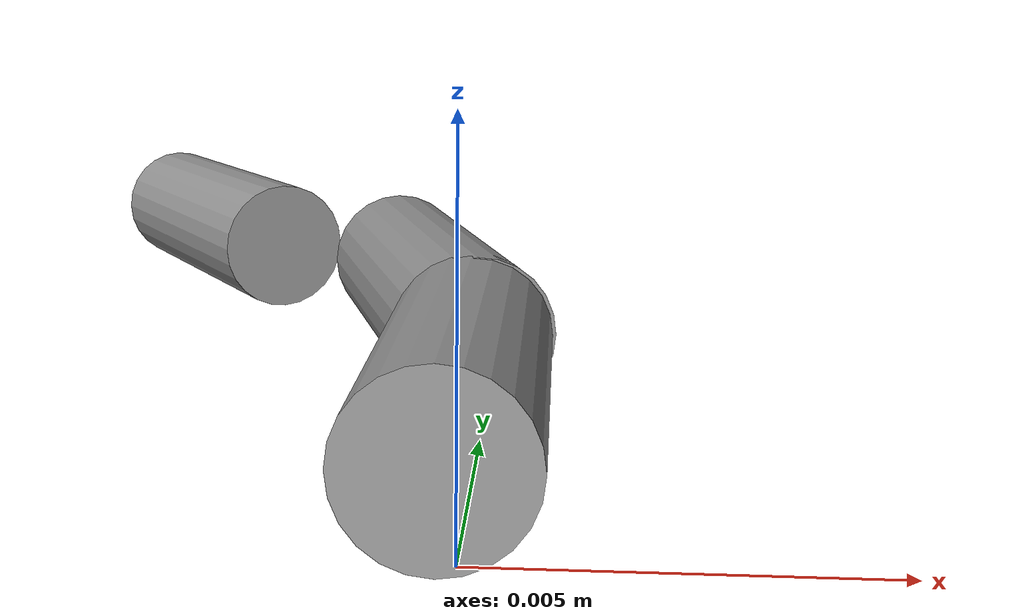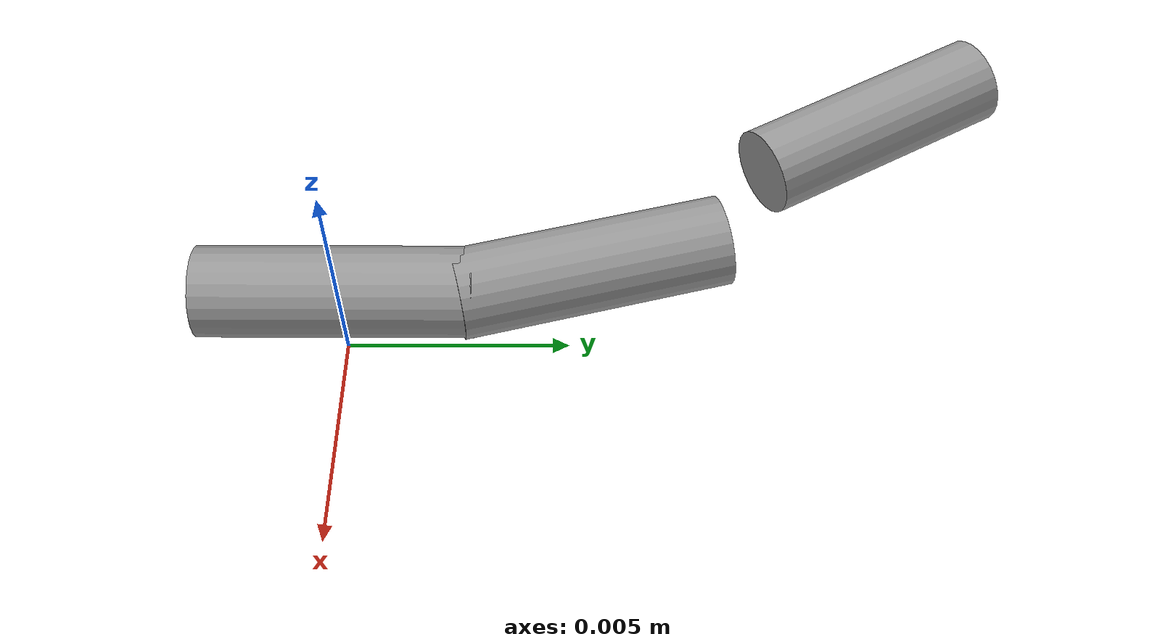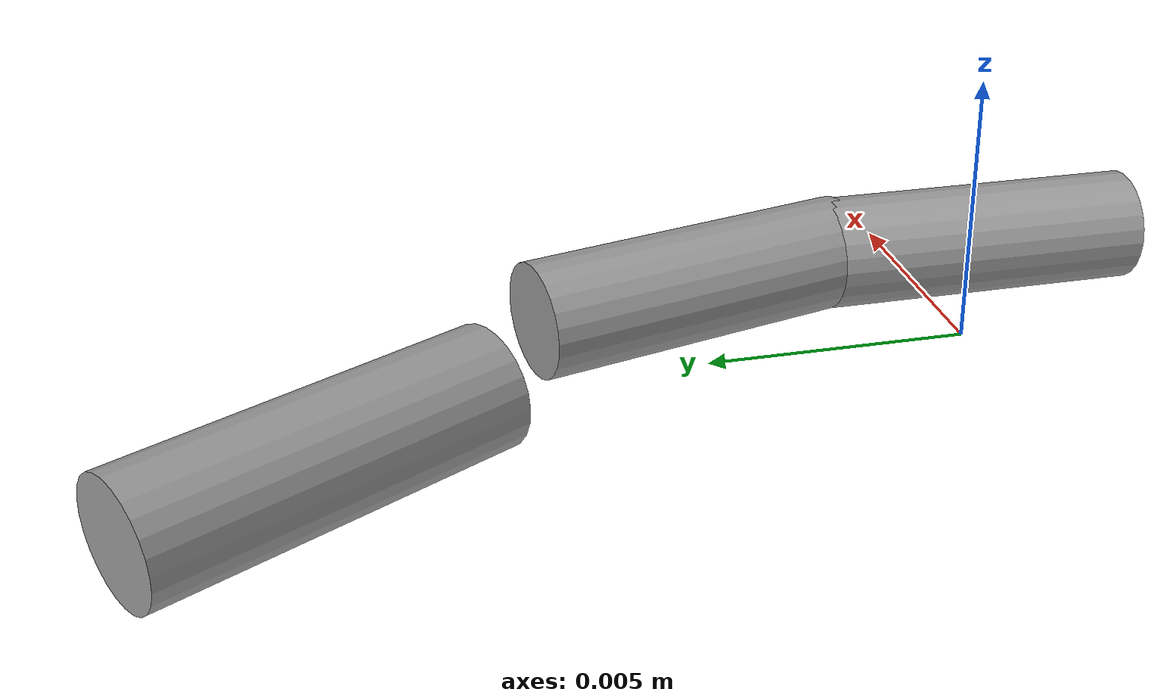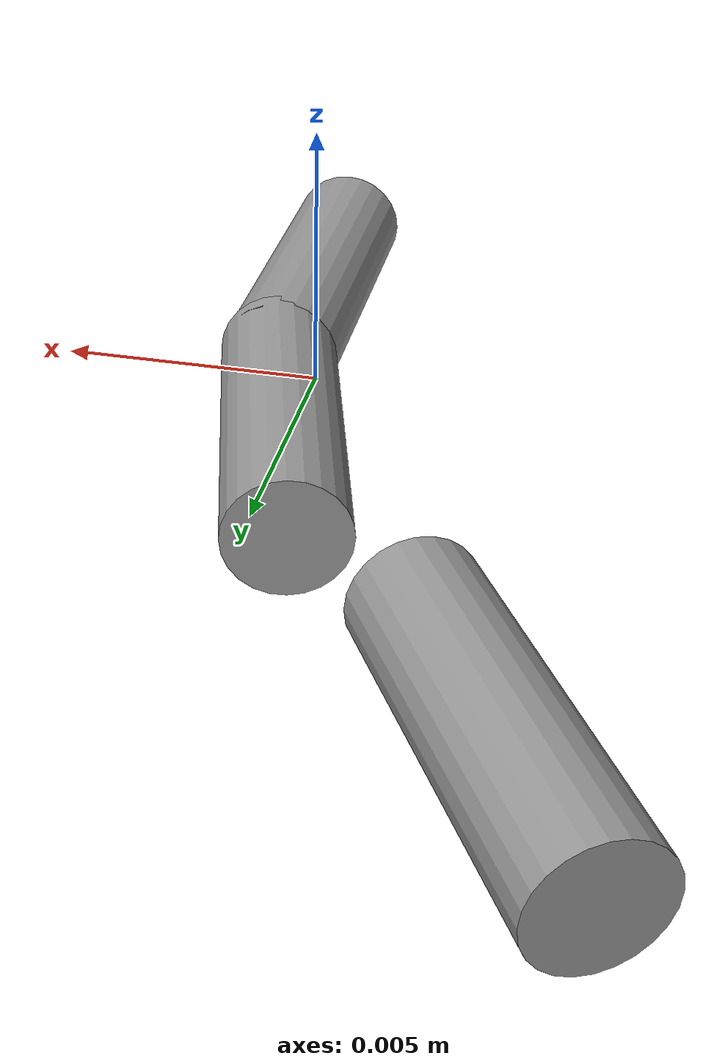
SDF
<?xml version="1.0" ?>
<sdf version="1.4">

  <model name="needle_rob">
      <static>true</static>
    <link name="needle_1">

  <pose>0 0 0.002 1.57 0 0</pose>
      <inertial>
        <mass>0.01</mass>
        <inertia>
          <ixx>0.001</ixx>
          <ixy>0</ixy>
          <ixz>0</ixz>
          <iyy>0.001</iyy>
          <iyz>0</iyz>
          <izz>0.001</izz>
        </inertia>
      </inertial>

     <collision name='collision'>
        <geometry>
          <cylinder>
            <radius>0.001</radius>
            <length>0.006</length>
          </cylinder>
        </geometry>
       <surface>
            <friction>
              <ode>
                <mu>50.0</mu>
                <mu2>50.0</mu2>
              </ode>
            </friction>
            <contact>
              <ode>
                <kp>1000000.0</kp>
                <kd>100.0</kd>
                <max_vel>1.0</max_vel>
                <min_depth>0.005</min_depth>
              </ode>
            </contact>
          </surface>
      </collision>

     <visual name='visual'>
        <geometry>
           <cylinder>
            <radius>0.001</radius>
            <length>0.006</length>
          </cylinder>
        </geometry>
        <material>
        <script>
            <uri>file://media/materials/scripts/gazebo.material</uri>
            <name>Gazebo/Grey</name>
        </script>
        </material>
     </visual>
    </link>

  <link name="needle_2">
  <pose>-0.0007 0.0055 0.002 1.57 0 0.2619</pose>
      <inertial>
        <mass>0.01</mass>
        <inertia>
          <ixx>0.001</ixx>
          <ixy>0</ixy>
          <ixz>0</ixz>
          <iyy>0.001</iyy>
          <iyz>0</iyz>
          <izz>0.001</izz>
        </inertia>
      </inertial>

     <collision name='collision'>
        <geometry>
          <cylinder>
            <radius>0.001</radius>
            <length>0.006</length>
          </cylinder>
        </geometry>
       <surface>
            <friction>
              <ode>
                <mu>50.0</mu>
                <mu2>50.0</mu2>
              </ode>
            </friction>
            <contact>
              <ode>
                <kp>1000000.0</kp>
                <kd>100.0</kd>
                <max_vel>1.0</max_vel>
                <min_depth>0.005</min_depth>
              </ode>
            </contact>
          </surface>
      </collision>

     <visual name='visual'>
        <geometry>
           <cylinder>
            <radius>0.001</radius>
            <length>0.006</length>
          </cylinder>
        </geometry>
        <material>
        <script>
            <uri>file://media/materials/scripts/gazebo.material</uri>
            <name>Gazebo/Grey</name>
        </script>
        </material>
     </visual>

    </link>

 <link name="needle_3">
  <pose>-0.005 0.012 0.002 1.57 0 0.5238</pose>
      <inertial>
        <mass>0.01</mass>
        <inertia>
          <ixx>0.001</ixx>
          <ixy>0</ixy>
          <ixz>0</ixz>
          <iyy>0.001</iyy>
          <iyz>0</iyz>
          <izz>0.001</izz>
        </inertia>
      </inertial>

     <collision name='collision'>
        <geometry>
          <cylinder>
            <radius>0.001</radius>
            <length>0.006</length>
          </cylinder>
        </geometry>
       <surface>
            <friction>
              <ode>
                <mu>50.0</mu>
                <mu2>50.0</mu2>
              </ode>
            </friction>
            <contact>
              <ode>
                <kp>1000000.0</kp>
                <kd>100.0</kd>
                <max_vel>1.0</max_vel>
                <min_depth>0.005</min_depth>
              </ode>
            </contact>
          </surface>
      </collision>

     <visual name='visual'>
        <geometry>
           <cylinder>
            <radius>0.001</radius>
            <length>0.006</length>
          </cylinder>
        </geometry>
        <material>
        <script>
            <uri>file://media/materials/scripts/gazebo.material</uri>
            <name>Gazebo/Grey</name>
        </script>
        </material>
     </visual>

    </link>

</model>
</sdf>
